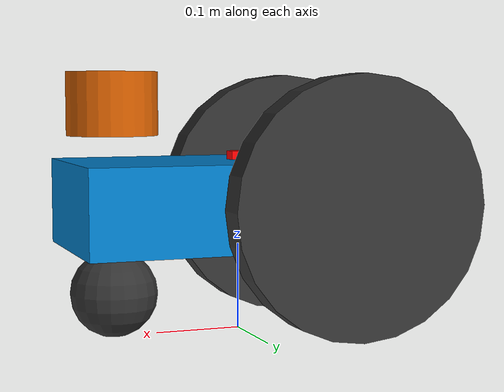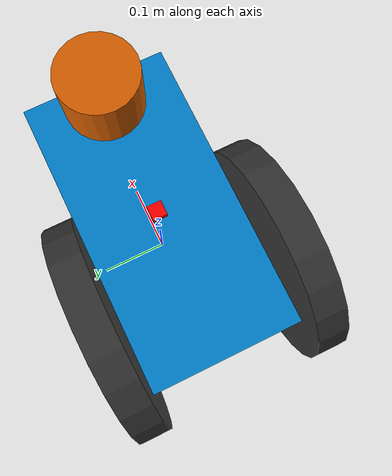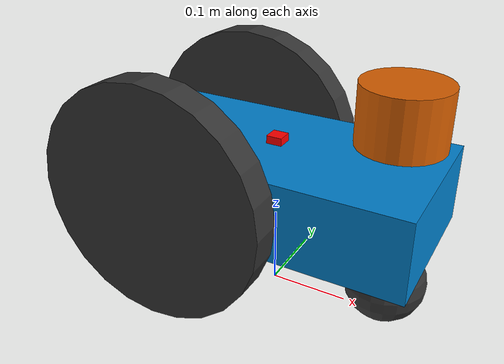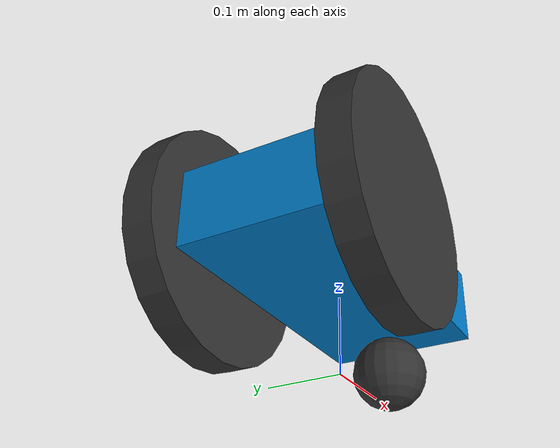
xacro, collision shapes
<?xml version="1.0"?>
<robot name="my_robot" xmlns:xacro="http://www.ros.org/wiki/xacro">

    <xacro:include filename="$(find my_robot_description)/urdf/chassis/base.xacro"/>
    <xacro:include filename="$(find my_robot_description)/urdf/chassis/wheel.xacro"/>
    <xacro:include filename="$(find my_robot_description)/urdf/chassis/caster.xacro"/>
    <xacro:include filename="$(find my_robot_description)/urdf/sensors/velodyne.xacro"/>

    <xacro:include filename="$(find my_robot_description)/urdf/sensors/imu.xacro"/>

    <xacro:robot_base/>
    <xacro:diff_wheel prefix="left" parent="base_link" x_reflect="-1" y_reflect="1"/>
    <xacro:diff_wheel prefix="right" parent="base_link" x_reflect="-1" y_reflect="-1"/>
    <xacro:caster_wheel prefix="front" parent="base_link" x_offset="0.15"/>
    <xacro:sensor_velodyne parent="base_link" x="0.15" y="0" z="0.08"/>

    <xacro:sensor_imu parent="base_link" x="0.0" y="0.0" z="0.05"/>
    <gazebo>
        <plugin name="differential_drive_controller" filename="libgazebo_ros_diff_drive.so">
            <updateRate>50.0</updateRate>
            <leftJoint>left_wheel_joint</leftJoint>
            <rightJoint>right_wheel_joint</rightJoint>
            <wheelSeparation>0.24</wheelSeparation>
            <wheelDiameter>0.3</wheelDiameter>
            <commandTopic>cmd_vel</commandTopic>
            <odometryTopic>odom</odometryTopic>
            <odometryFrame>odom</odometryFrame>
            <robotBaseFrame>base_footprint</robotBaseFrame>
            <publishWheelTF>false</publishWheelTF>
            <publishOdomTF>true</publishOdomTF>
            <publishWheelJointState>true</publishWheelJointState>
            <wheelAcceleration>1.0</wheelAcceleration>
            <wheelTorque>20</wheelTorque>
        </plugin>
    </gazebo>
</robot>

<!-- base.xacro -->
<robot xmlns:xacro="http://www.ros.org/wiki/xacro">

    <xacro:macro name="robot_base">

        <link name="base_footprint"/>

        <link name="base_link">
            <visual>
                <geometry>
                    <box size="0.4 0.2 0.1"/>
                </geometry>
                <material name="blue">
                    <color rgba="0.0 0.5 0.8 1.0 0.5"/>
                </material>
            </visual>
            <collision>
                <geometry>
                    <box size="0.4 0.2 0.1"/>
                </geometry>
            </collision>
            <inertial>
                <mass value="1.0"/>
                <origin xyz="0 0 0" rpy="0 0 0"/>
                <inertia ixx="0.01" ixy="0" ixz="0" iyy="0.01" iyz="0" izz="0.01"/>
            </inertial>
        </link>

        <joint name="base_joint" type="fixed">
            <parent link="base_footprint"/>
            <child link="base_link"/>
            <origin xyz="0 0 0.15" rpy="0 0 0"/>
        </joint>

        <gazebo reference="base_link">
            <material>Gazebo/Blue</material>
        </gazebo>

    </xacro:macro>
</robot>

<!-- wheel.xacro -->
<robot xmlns:xacro="http://www.ros.org/wiki/xacro">

    <xacro:macro name="diff_wheel" params="prefix parent x_reflect y_reflect">

        <link name="${prefix}_wheel">
            <visual>
                <geometry>
                    <cylinder radius="0.15" length="0.04"/>
                </geometry>
                <material name="dark_grey">
                    <color rgba="0.2 0.2 0.2 1.0"/>
                </material>
            </visual>
            <collision>
                <geometry>
                    <cylinder radius="0.15" length="0.04"/>
                </geometry>
            </collision>
            <inertial>
                <mass value="0.2"/>
                <inertia ixx="0.001" ixy="0" ixz="0" iyy="0.001" iyz="0" izz="0.001"/>
            </inertial>
        </link>

        <joint name="${prefix}_wheel_joint" type="continuous">
            <parent link="${parent}"/>
            <child link="${prefix}_wheel"/>
            <origin xyz="${x_reflect*0.1} ${y_reflect*0.12} 0" rpy="-1.5707 0 0"/>
            <axis xyz="0 0 1"/>
        </joint>

        <gazebo reference="${prefix}_wheel">
            <mu1>1.0</mu1>
            <mu2>1.0</mu2>
            <material>Gazebo/DarkGrey</material>
        </gazebo>

    </xacro:macro>
</robot>

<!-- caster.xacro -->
<robot xmlns:xacro="http://www.ros.org/wiki/xacro">

    <xacro:macro name="caster_wheel" params="prefix parent x_offset">

        <link name="${prefix}_caster">
            <visual>
                <geometry>
                    <sphere radius="0.05"/>
                </geometry>
                <material name="dark_grey">
                    <color rgba="0.2 0.2 0.2 1.0"/>
                </material>
            </visual>
            <collision>
                <geometry>
                    <sphere radius="0.05"/>
                </geometry>
            </collision>
            <inertial>
                <mass value="0.1"/>
                <inertia ixx="0.0001" ixy="0" ixz="0" iyy="0.0001" iyz="0" izz="0.0001"/>
            </inertial>
        </link>

        <joint name="${prefix}_caster_joint" type="fixed">
            <parent link="${parent}"/>
            <child link="${prefix}_caster"/>
            <origin xyz="${x_offset} 0 -0.10" rpy="0 0 0"/>
        </joint>

        <gazebo reference="${prefix}_caster">
            <mu1>0.0</mu1>
            <mu2>0.0</mu2>
            <material>Gazebo/DarkGrey</material>
        </gazebo>

    </xacro:macro>
</robot>

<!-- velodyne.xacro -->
<robot xmlns:xacro="http://www.ros.org/wiki/xacro">

    <xacro:include filename="$(find velodyne_description)/urdf/VLP-16.urdf.xacro"/>

    <xacro:macro name="sensor_velodyne" params="parent x y z">

        <xacro:VLP-16 parent="${parent}" name="velodyne" topic="/velodyne_points" hz="10" samples="512" gpu="false">
            <origin xyz="${x} ${y} ${z}" rpy="0 0 0" />
        </xacro:VLP-16>

    </xacro:macro>
</robot>

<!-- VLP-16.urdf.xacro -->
<robot xmlns:xacro="http://www.ros.org/wiki/xacro" name="VLP-16">
  <xacro:property name="M_PI" value="3.1415926535897931" />
  <xacro:macro name="VLP-16" params="*origin is_sim:=true parent:=base_link name:=velodyne tf_prefix:='' topic:=/velodyne_points organize_cloud:=false hz:=10 lasers:=16 samples:=1875 collision_range:=0.3 min_range:=0.0 max_range:=100.0 noise:=0.008 min_angle:=-${M_PI} max_angle:=${M_PI} gpu:=false">

    <joint name="${name}_base_mount_joint" type="fixed">
      <xacro:insert_block name="origin" />
      <parent link="${parent}"/>
      <child link="${name}_base_link"/>
    </joint>

    <link name="${name}_base_link">
      <inertial>
        <mass value="0.83"/>
        <origin xyz="0 0 0.03585"/>
        <inertia ixx="${(0.83 * (3.0*0.0516*0.0516 + 0.0717*0.0717)) / 12.0}" ixy="0" ixz="0"
          iyy="${(0.83 * (3.0*0.0516*0.0516 + 0.0717*0.0717)) / 12.0}" iyz="0"
          izz="${0.5 * 0.83 * (0.0516*0.0516)}"/>
      </inertial>
      <visual>
        <geometry>
          <mesh filename="package://velodyne_description/meshes/VLP16_base_1.dae" />
        </geometry>
      </visual>
      <visual>
        <geometry>
          <mesh filename="package://velodyne_description/meshes/VLP16_base_2.dae" />
        </geometry>
      </visual>
      <collision>
        <origin rpy="0 0 0" xyz="0 0 0.03585"/>
        <geometry>
          <cylinder radius="0.0516" length="0.0717"/>
        </geometry>
      </collision>
    </link>

    <joint name="${name}_base_scan_joint" type="fixed" >
      <origin xyz="0 0 0.0377" rpy="0 0 0" />
      <parent link="${name}_base_link" />
      <child link="${name}"/>
    </joint>

    <link name="${name}">
      <inertial>
        <mass value="0.01"/>
        <origin xyz="0 0 0"/>
        <inertia ixx="1e-7" ixy="0" ixz="0" iyy="1e-7" iyz="0" izz="1e-7"/>
      </inertial>
      <visual>
        <origin xyz="0 0 -0.0377" />
        <geometry>
          <mesh filename="package://velodyne_description/meshes/VLP16_scan.dae" />
        </geometry>
      </visual>
      <collision>
        <geometry>
          <sphere radius="0"/>
        </geometry>
      </collision>
    </link>

    <!-- Gazebo requires the velodyne_gazebo_plugins package -->
    <xacro:if value="${is_sim}">
        <gazebo reference="${name}">
            <xacro:if value="${gpu}">
                <sensor type="gpu_ray" name="${name}-VLP16">
                <pose>0 0 0 0 0 0</pose>
                <visualize>false</visualize>
                <update_rate>${hz}</update_rate>
                <ray>
                    <scan>
                    <horizontal>
                        <samples>${samples}</samples>
                        <resolution>1</resolution>
                        <min_angle>${min_angle}</min_angle>
                        <max_angle>${max_angle}</max_angle>
                    </horizontal>
                    <vertical>
                        <samples>${lasers}</samples>
                        <resolution>1</resolution>
                        <min_angle>-${15.0*M_PI/180.0}</min_angle>
                        <max_angle> ${15.0*M_PI/180.0}</max_angle>
                    </vertical>
                    </scan>
                    <range>
                    <min>${collision_range}</min>
                    <max>${max_range+1}</max>
                    <resolution>0.001</resolution>
                    </range>
                    <noise>
                    <type>gaussian</type>
                    <mean>0.0</mean>
                    <stddev>0.0</stddev>
                    </noise>
                </ray>
                <plugin name="gazebo_ros_laser_controller" filename="libgazebo_ros_velodyne_laser.so">
                    <ros>
                    <namespace>/${name}</namespace>
                    <remapping>~/out:=${topic}</remapping>
                    </ros>
                    <tf_prefix>${tf_prefix}</tf_prefix>
                    <frame_name>${name}</frame_name>
                    <organize_cloud>${organize_cloud}</organize_cloud>
                    <min_range>${min_range}</min_range>
                    <max_range>${max_range}</max_range>
                    <gaussian_noise>${noise}</gaussian_noise>
                </plugin>
                </sensor>
            </xacro:if>
            <xacro:unless value="${gpu}">
                <sensor type="ray" name="${name}-VLP16">
                <pose>0 0 0 0 0 0</pose>
                <visualize>false</visualize>
                <update_rate>${hz}</update_rate>
                <ray>
                    <scan>
                    <horizontal>
                        <samples>${samples}</samples>
                        <resolution>1</resolution>
                        <min_angle>${min_angle}</min_angle>
                        <max_angle>${max_angle}</max_angle>
                    </horizontal>
                    <vertical>
                        <samples>${lasers}</samples>
                        <resolution>1</resolution>
                        <min_angle>-${15.0*M_PI/180.0}</min_angle>
                        <max_angle> ${15.0*M_PI/180.0}</max_angle>
                    </vertical>
                    </scan>
                    <range>
                    <min>${collision_range}</min>
                    <max>${max_range+1}</max>
                    <resolution>0.001</resolution>
                    </range>
                    <noise>
                    <type>gaussian</type>
                    <mean>0.0</mean>
                    <stddev>0.0</stddev>
                    </noise>
                </ray>
                <plugin name="gazebo_ros_laser_controller" filename="libgazebo_ros_velodyne_laser.so">
                    <ros>
                    <namespace>/${name}</namespace>
                    <remapping>~/out:=${topic}</remapping>
                    </ros>
                    <tf_prefix>${tf_prefix}</tf_prefix>
                    <frame_name>${name}</frame_name>
                    <organize_cloud>${organize_cloud}</organize_cloud>
                    <min_range>${min_range}</min_range>
                    <max_range>${max_range}</max_range>
                    <gaussian_noise>${noise}</gaussian_noise>
                </plugin>
                </sensor>
            </xacro:unless>
        </gazebo>
    </xacro:if>

  </xacro:macro>
</robot>

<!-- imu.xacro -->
<robot xmlns:xacro="http://www.ros.org/wiki/xacro">

    <xacro:macro name="sensor_imu" params="parent x y z">

        <link name="imu_link">
            <visual>
                <geometry>
                    <box size="0.02 0.02 0.02"/>
                </geometry>
                <material name="red">
                    <color rgba="1.0 0.0 0.0 1.0"/>
                </material>
            </visual>
            <collision>
                <geometry>
                    <box size="0.02 0.02 0.02"/>
                </geometry>
            </collision>
            <inertial>
                <mass value="0.01"/>
                <inertia ixx="0.000001" ixy="0" ixz="0" iyy="0.000001" iyz="0" izz="0.000001"/>
            </inertial>
        </link>

        <joint name="imu_joint" type="fixed">
            <parent link="${parent}"/>
            <child link="imu_link"/>
            <origin xyz="${x} ${y} ${z}" rpy="0 0 0"/>
        </joint>

        <gazebo reference="imu_link">
            <gravity>true</gravity>
            <sensor name="imu_sensor" type="imu">
                <always_on>true</always_on>
                <update_rate>200</update_rate>
                <visualize>true</visualize>
                <topic>__default_topic__</topic>
                <plugin filename="libgazebo_ros_imu_sensor.so" name="imu_plugin">
                    <topicName>imu/data</topicName>
                    <bodyName>imu_link</bodyName>
                    <updateRateHZ>200.0</updateRateHZ>
                    <gaussianNoise>0.005</gaussianNoise>
                    <xyzOffset>0 0 0</xyzOffset>
                    <rpyOffset>0 0 0</rpyOffset>
                    <frameName>imu_link</frameName>
                    <initialOrientationAsReference>false</initialOrientationAsReference>
                </plugin>
                <pose>0 0 0 0 0 0</pose>
            </sensor>
        </gazebo>

    </xacro:macro>
</robot>
